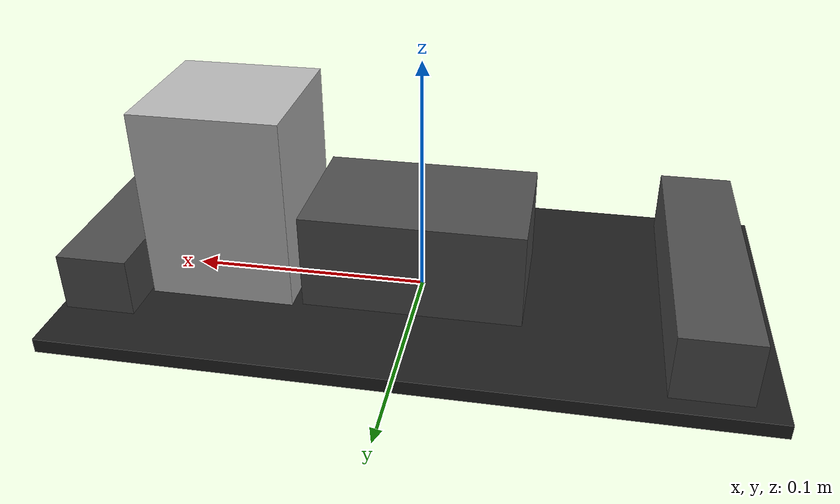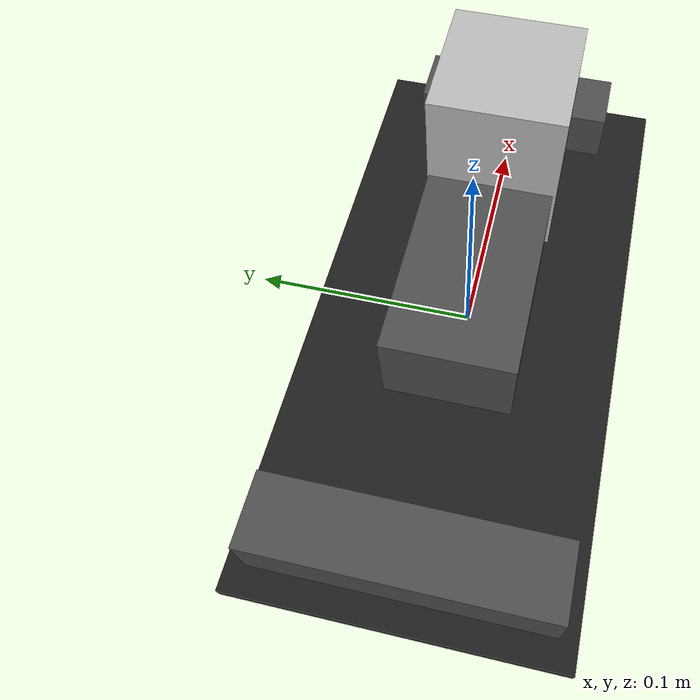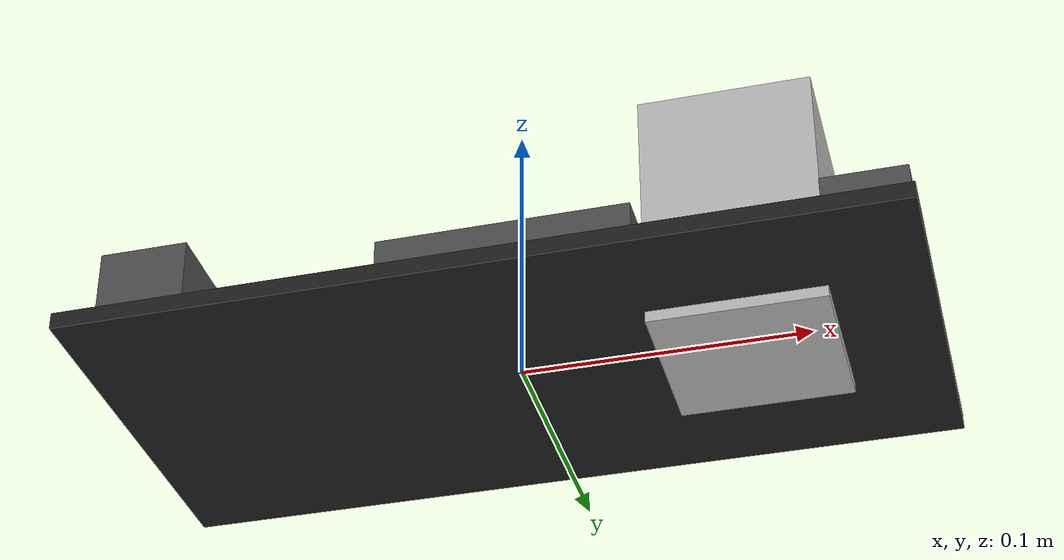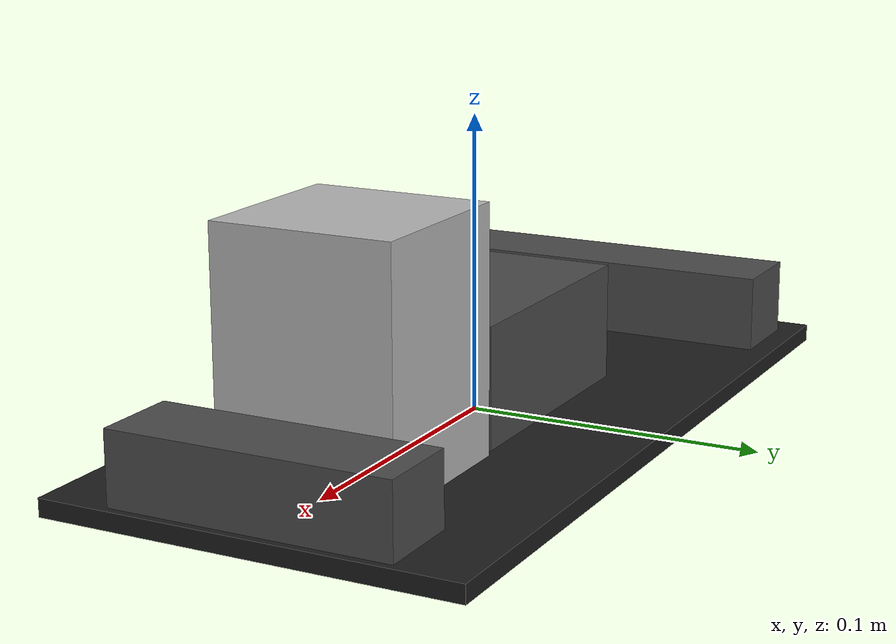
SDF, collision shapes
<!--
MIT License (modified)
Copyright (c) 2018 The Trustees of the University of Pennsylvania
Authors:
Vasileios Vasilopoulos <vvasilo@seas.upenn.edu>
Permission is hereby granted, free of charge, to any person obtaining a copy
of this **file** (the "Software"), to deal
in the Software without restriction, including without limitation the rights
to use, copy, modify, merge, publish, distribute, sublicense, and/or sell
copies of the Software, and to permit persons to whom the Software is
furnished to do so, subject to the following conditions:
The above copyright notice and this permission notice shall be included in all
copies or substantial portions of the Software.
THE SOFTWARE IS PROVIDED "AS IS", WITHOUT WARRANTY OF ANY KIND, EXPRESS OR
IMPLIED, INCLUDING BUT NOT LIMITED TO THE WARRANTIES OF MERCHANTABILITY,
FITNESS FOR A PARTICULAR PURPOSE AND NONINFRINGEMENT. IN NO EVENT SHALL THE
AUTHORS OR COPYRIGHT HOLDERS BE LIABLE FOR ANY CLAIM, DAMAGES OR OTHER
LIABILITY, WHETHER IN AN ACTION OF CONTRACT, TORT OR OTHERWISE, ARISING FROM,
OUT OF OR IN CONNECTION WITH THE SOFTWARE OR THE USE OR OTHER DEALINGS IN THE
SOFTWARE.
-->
<?xml version='1.0'?>

<sdf version='1.6'>
  <model name='sensor_head'>
    <!-- Sensor head base -->
    <link name='base'>
      <pose frame=''>0 0 0 0 -0 0</pose>
      <inertial>
        <mass>0.18</mass>
        <inertia>
          <ixx>2.94e-4</ixx>
          <ixy>0</ixy>
          <ixz>0</ixz>
          <iyy>1.21e-3</iyy>
          <iyz>0</iyz>
          <izz>1.5e-3</izz>
        </inertia>
        <pose frame=''>0 0 0 0 -0 0</pose>
      </inertial>
      <gravity>1</gravity>
      <self_collide>0</self_collide>
      <kinematic>0</kinematic>
      <visual name='base_visual'>
        <pose frame=''>0 0 0 0 -0 0</pose>
        <geometry>
          <box>
            <size>0.284 0.14 0.006</size>
          </box>
        </geometry>
        <material>
          <lighting>1</lighting>
          <script>
            <uri>file://media/materials/scripts/gazebo.material</uri>
            <name>Gazebo/Black</name>
          </script>
        </material>
        <cast_shadows>1</cast_shadows>
        <transparency>0</transparency>
      </visual>
      <collision name='base_collision'>
        <laser_retro>0</laser_retro>
        <max_contacts>10</max_contacts>
        <pose frame=''>0 0 0 0 -0 0</pose>
        <geometry>
          <box>
            <size>0.284 0.14 0.006</size>
          </box>
        </geometry>
        <surface>
          <friction>
            <ode>
              <mu>1</mu>
              <mu2>1</mu2>
              <fdir1>0 0 0</fdir1>
              <slip1>0</slip1>
              <slip2>0</slip2>
            </ode>
            <torsional>
              <coefficient>1</coefficient>
              <patch_radius>0</patch_radius>
              <surface_radius>0</surface_radius>
              <use_patch_radius>1</use_patch_radius>
              <ode>
                <slip>0</slip>
              </ode>
            </torsional>
          </friction>
          <bounce>
            <restitution_coefficient>0</restitution_coefficient>
            <threshold>1e+06</threshold>
          </bounce>
          <contact>
            <collide_without_contact>0</collide_without_contact>
            <collide_without_contact_bitmask>1</collide_without_contact_bitmask>
            <collide_bitmask>1</collide_bitmask>
            <ode>
              <soft_cfm>0</soft_cfm>
              <soft_erp>0.2</soft_erp>
              <kp>1e+13</kp>
              <kd>1</kd>
              <max_vel>0.01</max_vel>
              <min_depth>0</min_depth>
            </ode>
            <bullet>
              <split_impulse>1</split_impulse>
              <split_impulse_penetration_threshold>-0.01</split_impulse_penetration_threshold>
              <soft_cfm>0</soft_cfm>
              <soft_erp>0.2</soft_erp>
              <kp>1e+13</kp>
              <kd>1</kd>
            </bullet>
          </contact>
        </surface>
      </collision>
    </link>

    <!-- LIDAR -->
    <link name="hokuyo_link">
      <collision name="hokuyo_collision">
        <pose>0.079 0 0.038 0 0 0</pose>
        <geometry>
          <box>
            <size>0.06 0.06 0.09</size>
          </box>
        </geometry>
      </collision>
      <visual name="hokuyo_visual">
        <pose>0.079 0 0.038 0 0 0</pose>
        <geometry>
          <mesh>
            <uri>model://minitaur_constrained/../../meshes/hokuyo.dae</uri>
          </mesh>
        </geometry>
      </visual>
      <inertial>
        <mass>0.4</mass>
        <inertia>
          <ixx>3.9e-4</ixx>
          <ixy>0</ixy>
          <ixz>0</ixz>
          <iyy>3.9e-4</iyy>
          <iyz>0</iyz>
          <izz>2.4e-4</izz>
        </inertia>
        <pose frame=''>0.079 0 0.038 0 -0 0</pose>
      </inertial>
      <sensor type="ray" name="head_hokuyo_sensor">
        <pose>0.079 0 0.07 0 0 0</pose>
        <visualize>false</visualize>
        <update_rate>40</update_rate>
        <ray>
          <scan>
            <horizontal>
              <samples>720</samples>
              <resolution>1</resolution>
              <min_angle>-3.14</min_angle>
              <max_angle>3.14</max_angle>
            </horizontal>
          </scan>
          <range>
            <min>0.10</min>
            <max>30.0</max>
            <resolution>0.01</resolution>
          </range>
          <noise>
            <type>gaussian</type>
            <mean>0.0</mean>
            <stddev>0.01</stddev>
          </noise>
        </ray>
        <plugin name="gazebo_ros_head_hokuyo_controller" filename="libgazebo_ros_laser.so">
          <topicName>/scan</topicName>
          <frameName>/laser</frameName>
        </plugin>
      </sensor>
    </link>
    <joint name="hokuyo_joint" type="fixed">
      <child>hokuyo_link</child>
      <parent>base</parent>
    </joint>

    <!-- RGB Camera -->
    <link name="camera_link">
      <collision name="camera_collision">
        <pose>0.125 0 0.015 0 0 0</pose>
        <geometry>
          <box>
            <size>0.029 0.094 0.024</size>
          </box>
        </geometry>
      </collision>
      <visual name="camera_visual">
        <pose>0.125 0.039 0 0 0 -1.57</pose>
        <geometry>
          <mesh>
            <uri>model://minitaur_constrained/../../meshes/camera.stl</uri>
            <scale>0.02 0.02 0.02</scale>
          </mesh>
        </geometry>
        <material>
          <lighting>1</lighting>
          <script>
            <uri>file://media/materials/scripts/gazebo.material</uri>
            <name>Gazebo/DarkGrey</name>
          </script>
        </material>
      </visual>
      <inertial>
        <mass>0.16</mass>
        <inertia>
          <ixx>1.2e-4</ixx>
          <ixy>0</ixy>
          <ixz>0</ixz>
          <iyy>1.9e-5</iyy>
          <iyz>0</iyz>
          <izz>1.2e-4</izz>
        </inertia>
        <pose frame=''>0.125 0 0.015 0 -0 0</pose>
      </inertial>
      <sensor type="camera" name="camera1">
        <pose>0.135 0 0.03 0 0 0</pose>
        <update_rate>30.0</update_rate>
        <camera name="head">
          <image>
            <width>640</width>
            <height>480</height>
            <format>R8G8B8</format>
          </image>
          <clip>
            <near>0.02</near>
            <far>300</far>
          </clip>
          <noise>
            <type>gaussian</type>
            <!-- Noise is sampled independently per pixel on each frame.
               That pixel's noise value is added to each of its color
               channels, which at that point lie in the range [0,1]. -->
            <mean>0.0</mean>
            <stddev>0.007</stddev>
          </noise>
        </camera>
        <!-- Input camera parameters - the camera calibration yaml file gives width, height etc. -->
        <!-- For distortion model plumb_bob, the 5 parameters are (k1, k2, t1, t2, k3) -->
        <plugin name="camera_controller" filename="libgazebo_ros_camera.so">
          <alwaysOn>true</alwaysOn>
          <updateRate>0.0</updateRate>
          <cameraName>usb_cam</cameraName>
          <imageTopicName>image_raw</imageTopicName>
          <cameraInfoTopicName>camera_info</cameraInfoTopicName>
          <frameName>rgb_camera</frameName>
          <hackBaseline>0.07</hackBaseline>
          <distortionK1>0.0</distortionK1>
          <distortionK2>0.0</distortionK2>
          <distortionK3>0.0</distortionK3>
          <distortionT1>0.0</distortionT1>
          <distortionT2>0.0</distortionT2>
        </plugin>
      </sensor>
    </link>
    <joint name="camera_joint" type="fixed">
      <child>camera_link</child>
      <parent>base</parent>
    </joint>

    <!-- Stereo camera -->
    <link name="stereo_camera_link">
      <collision name="stereo_camera_collision">
        <pose>-0.115 0 0.01625 0 0 0</pose>
        <geometry>
          <box>
            <size>0.0305 0.1245 0.0265</size>
          </box>
        </geometry>
      </collision>
      <visual name="stereo_camera_visual">
        <pose>-0.115 0 0.01625 0 0 3.14</pose>
        <geometry>
          <mesh>
            <uri>model://minitaur_constrained/../../meshes/ZEDM.stl</uri>
          </mesh>
        </geometry>
        <material>
          <lighting>1</lighting>
          <script>
            <uri>file://media/materials/scripts/gazebo.material</uri>
            <name>Gazebo/DarkGrey</name>
          </script>
        </material>
      </visual>
      <inertial>
        <mass>0.0629</mass>
        <inertia>
          <ixx>8.5e-5</ixx>
          <ixy>0</ixy>
          <ixz>0</ixz>
          <iyy>8.6e-6</iyy>
          <iyz>0</iyz>
          <izz>8.6e-5</izz>
        </inertia>
        <pose frame=''>-0.115 0 0.01625 0 -0 0</pose>
      </inertial>
    </link>
    <joint name="stereo_camera_joint" type="fixed">
      <child>stereo_camera_link</child>
      <parent>base</parent>
    </joint>

    <!-- Computer -->
    <link name="computer_link">
      <collision name="computer_collision">
        <pose>0 0 0.023 0 0 0</pose>
        <geometry>
          <box>
            <size>0.090 0.057 0.04</size>
          </box>
        </geometry>
      </collision>
      <visual name="computer_visual">
        <pose>0 0 0.023 0 0 0</pose>
        <geometry>
          <box>
            <size>0.090 0.057 0.04</size>
          </box>
        </geometry>
        <material>
          <lighting>1</lighting>
          <script>
            <uri>file://media/materials/scripts/gazebo.material</uri>
            <name>Gazebo/DarkGrey</name>
          </script>
        </material>
      </visual>
      <inertial>
        <mass>0.2</mass>
        <inertia>
          <ixx>8e-5</ixx>
          <ixy>0</ixy>
          <ixz>0</ixz>
          <iyy>1.6e-4</iyy>
          <iyz>0</iyz>
          <izz>1.8e-4</izz>
        </inertia>
        <pose frame=''>0 0 0.023 0 -0 0</pose>
      </inertial>
    </link>
    <joint name="computer_joint" type="fixed">
      <child>computer_link</child>
      <parent>base</parent>
    </joint>

    <static>0</static>
    <allow_auto_disable>1</allow_auto_disable>
  </model>
</sdf>
